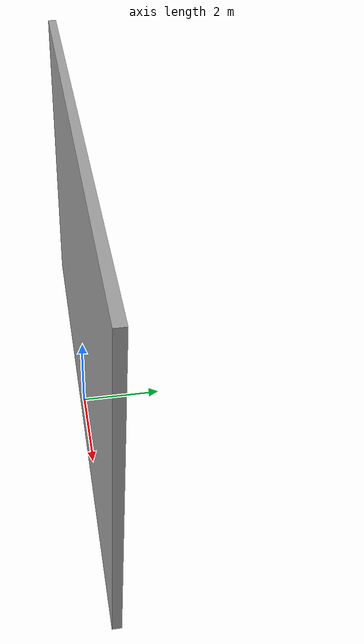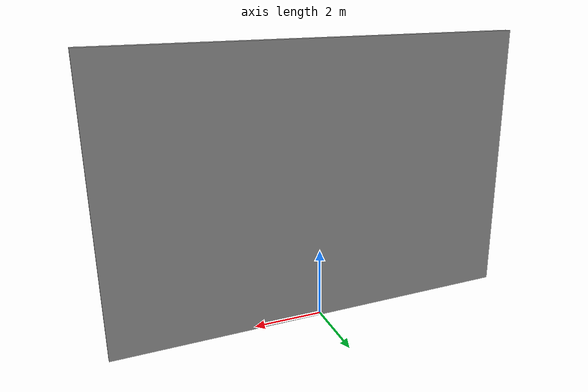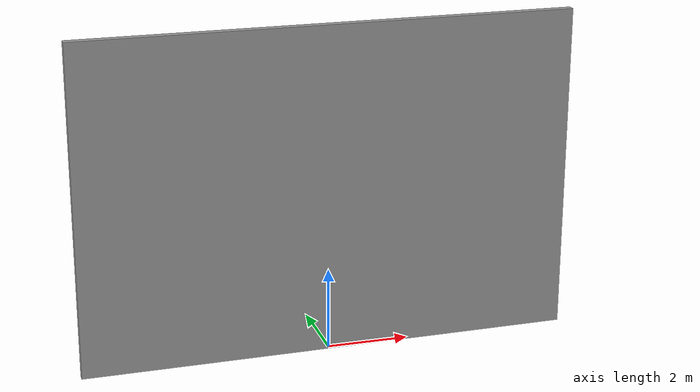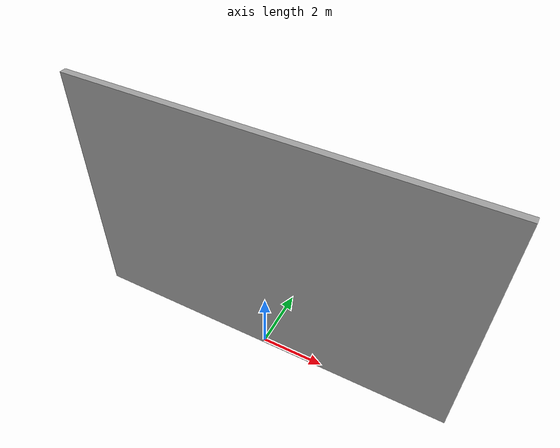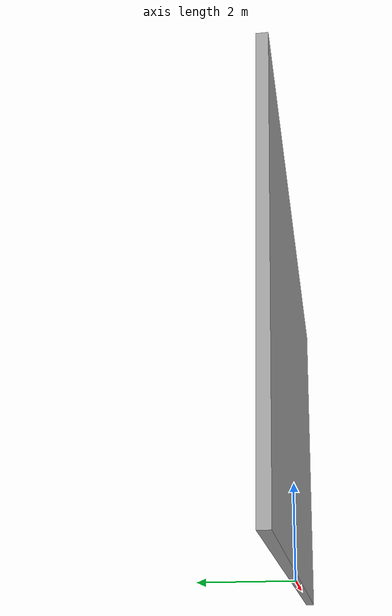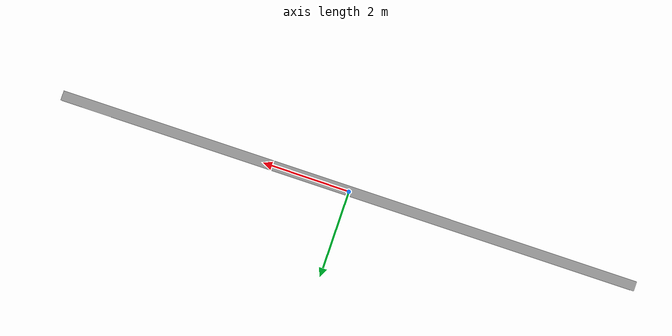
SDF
<sdf version="1.4">
  <!--Generated by blend2model.py-->
  <model name="blacksidewall">
    <pose>0.0 0.0 0.0  0.0 0.0 -1.57</pose>
    <static>true</static>
    <link name="body">
      <collision name="collision">
        <geometry>
          <mesh>
            <uri>model://blackwall/meshes/blackwall.dae</uri>
            <scale>1 0.78 1</scale>
          </mesh>
        </geometry>
      </collision>
      <visual name="visual">
        <geometry>
          <mesh>
            <uri>model://blackwall/meshes/blackwall.dae</uri>
            <scale>1 0.78 1</scale>
          </mesh>
        </geometry>
      </visual>
    </link>
  </model>
</sdf>
